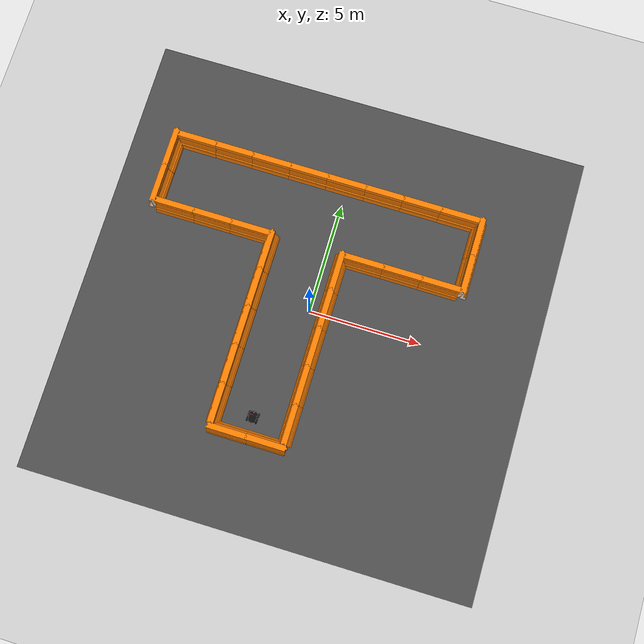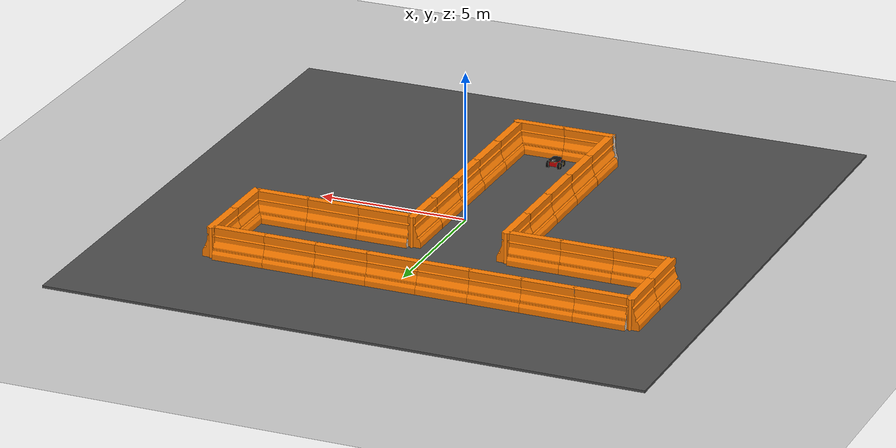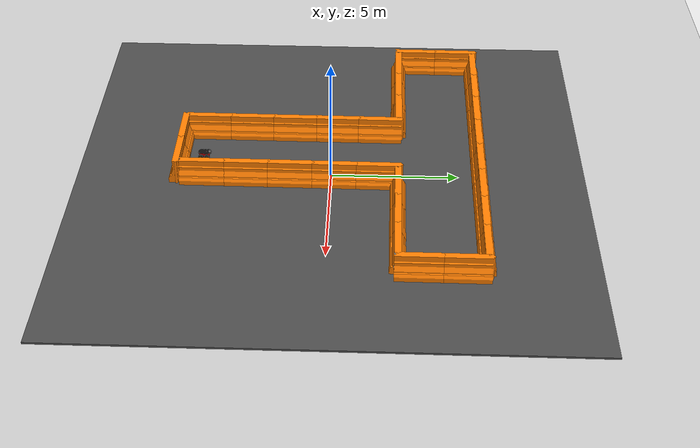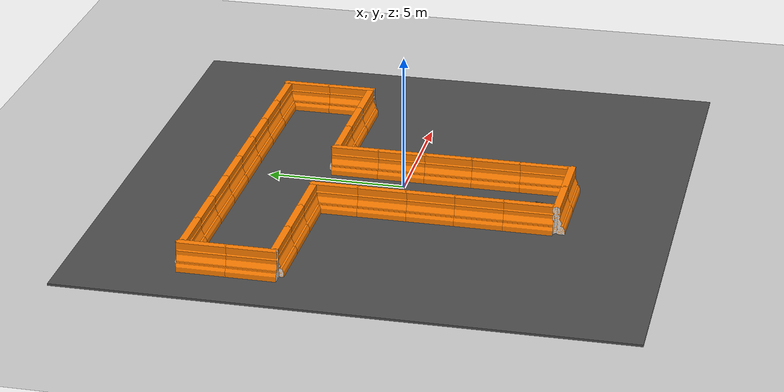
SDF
<sdf version="1.5">
 <world name="default">
  <model name="ground_plane">
   <static>1</static>
   <link name="link">
    <collision name="collision">
     <geometry><plane><normal>0 0 1</normal><size>100 100</size></plane></geometry>
     <surface><friction><ode><mu>100</mu><mu2>50</mu2></ode></friction></surface>
    </collision>
    <visual name="visual">
     <cast_shadows>0</cast_shadows>
     <geometry><plane><normal>0 0 1</normal><size>100 100</size></plane></geometry>
     <material>
      <script><uri>file://media/materials/scripts/gazebo.material</uri><name>Gazebo/Grey</name></script>
     </material>
    </visual>
   </link>
  </model>
  <physics name="default_physics" default="0" type="ode">
   <max_step_size>0.001</max_step_size>
   <real_time_update_rate>1000</real_time_update_rate>
   <gravity>0 0 -9.8</gravity>
   <magnetic_field>5.5645e-06 2.28758e-05 -4.23884e-05</magnetic_field>
  </physics>
  <scene><ambient>0.4 0.4 0.4 1</ambient><background>0.7 0.7 0.7 1</background><shadows>1</shadows></scene>
  <spherical_coordinates>
   <surface_model>EARTH_WGS84</surface_model>
   <latitude_deg>0</latitude_deg>
   <longitude_deg>0</longitude_deg>
   <elevation>0</elevation>
   <heading_deg>0</heading_deg>
  </spherical_coordinates>
  <model name="Pioneer3AT">
   <pose>-1.00371 -5.11243 0.220001 5e-06 -5e-06 1.51686</pose>
   <static>0</static>
   <link name="chassis">
    <inertial>
     <mass>14</mass>
     <inertia><ixx>0.3338</ixx><ixy>0</ixy><ixz>0</ixz><iyy>0.4783</iyy><iyz>0</iyz><izz>0.3338</izz></inertia>
    </inertial>
    <collision name="collision"><geometry><box><size>0.501 0.4 0.19</size></box></geometry></collision>
    <visual name="visual">
     <geometry><mesh><uri>model://pioneer3at/meshes/chassis.dae</uri></mesh></geometry>
    </visual>
    <velocity_decay><linear>0</linear><angular>0</angular></velocity_decay>
   </link>
   <link name="right_front_wheel">
    <pose>0.125 -0.201 -0.06 1.5707 -0 0</pose>
    <collision name="collision">
     <geometry><cylinder><radius>0.11</radius><length>0.075</length></cylinder></geometry>
     <surface><friction><ode><mu>1</mu><mu2>1</mu2><slip1>0.5</slip1><slip2>0</slip2></ode></friction></surface>
    </collision>
    <visual name="visual">
     <geometry><mesh><uri>model://pioneer3at/meshes/wheel.dae</uri></mesh></geometry>
    </visual>
    <velocity_decay><linear>0</linear><angular>0</angular></velocity_decay>
    <inertial>
     <inertia><ixx>1</ixx><ixy>0</ixy><ixz>0</ixz><iyy>1</iyy><iyz>0</iyz><izz>1</izz></inertia>
     <mass>1</mass>
    </inertial>
   </link>
   <link name="left_front_wheel">
    <pose>0.125 0.201 -0.06 1.5707 -0 0</pose>
    <collision name="collision">
     <geometry><cylinder><radius>0.11</radius><length>0.075</length></cylinder></geometry>
     <surface><friction><ode><mu>1</mu><mu2>1</mu2><slip1>0.5</slip1><slip2>0</slip2></ode></friction></surface>
    </collision>
    <visual name="visual">
     <geometry><mesh><uri>model://pioneer3at/meshes/wheel.dae</uri></mesh></geometry>
    </visual>
    <velocity_decay><linear>0</linear><angular>0</angular></velocity_decay>
    <inertial>
     <inertia><ixx>1</ixx><ixy>0</ixy><ixz>0</ixz><iyy>1</iyy><iyz>0</iyz><izz>1</izz></inertia>
     <mass>1</mass>
    </inertial>
   </link>
   <link name="right_rear_wheel">
    <pose>-0.125 -0.201 -0.06 1.5707 -0 0</pose>
    <collision name="collision">
     <geometry><cylinder><radius>0.11</radius><length>0.075</length></cylinder></geometry>
     <surface><friction><ode><mu>1</mu><mu2>1</mu2><slip1>0.5</slip1><slip2>0</slip2></ode></friction></surface>
    </collision>
    <visual name="visual">
     <geometry><mesh><uri>model://pioneer3at/meshes/wheel.dae</uri></mesh></geometry>
    </visual>
    <velocity_decay><linear>0</linear><angular>0</angular></velocity_decay>
    <inertial>
     <inertia><ixx>1</ixx><ixy>0</ixy><ixz>0</ixz><iyy>1</iyy><iyz>0</iyz><izz>1</izz></inertia>
     <mass>1</mass>
    </inertial>
   </link>
   <link name="left_rear_wheel">
    <pose>-0.125 0.201 -0.06 1.5707 -0 0</pose>
    <collision name="collision">
     <geometry><cylinder><radius>0.11</radius><length>0.075</length></cylinder></geometry>
     <surface><friction><ode><mu>1</mu><mu2>1</mu2><slip1>0.5</slip1><slip2>0</slip2></ode></friction></surface>
    </collision>
    <visual name="visual">
     <geometry><mesh><uri>model://pioneer3at/meshes/wheel.dae</uri></mesh></geometry>
    </visual>
    <velocity_decay><linear>0</linear><angular>0</angular></velocity_decay>
    <inertial>
     <inertia><ixx>1</ixx><ixy>0</ixy><ixz>0</ixz><iyy>1</iyy><iyz>0</iyz><izz>1</izz></inertia>
     <mass>1</mass>
    </inertial>
   </link>
   <joint name="right_front" type="revolute">
    <child>right_front_wheel</child>
    <parent>chassis</parent>
    <axis>
     <xyz>0 0 -1</xyz>
     <limit><lower>-1e+16</lower><upper>1e+16</upper></limit>
     <use_parent_model_frame>0</use_parent_model_frame>
     <dynamics><spring_reference>0</spring_reference><spring_stiffness>0</spring_stiffness></dynamics>
    </axis>
   </joint>
   <joint name="right_rear" type="revolute">
    <child>right_rear_wheel</child>
    <parent>chassis</parent>
    <axis>
     <xyz>0 0 -1</xyz>
     <limit><lower>-1e+16</lower><upper>1e+16</upper></limit>
     <use_parent_model_frame>0</use_parent_model_frame>
     <dynamics><spring_reference>0</spring_reference><spring_stiffness>0</spring_stiffness></dynamics>
    </axis>
   </joint>
   <joint name="left_front" type="revolute">
    <child>left_front_wheel</child>
    <parent>chassis</parent>
    <axis>
     <xyz>0 0 -1</xyz>
     <limit><lower>-1e+16</lower><upper>1e+16</upper></limit>
     <use_parent_model_frame>0</use_parent_model_frame>
     <dynamics><spring_reference>0</spring_reference><spring_stiffness>0</spring_stiffness></dynamics>
    </axis>
   </joint>
   <joint name="left_rear" type="revolute">
    <child>left_rear_wheel</child>
    <parent>chassis</parent>
    <axis>
     <xyz>0 0 -1</xyz>
     <limit><lower>-1e+16</lower><upper>1e+16</upper></limit>
     <use_parent_model_frame>0</use_parent_model_frame>
     <dynamics><spring_reference>0</spring_reference><spring_stiffness>0</spring_stiffness></dynamics>
    </axis>
   </joint>
   <link name="hokuyo::link">
    <inertial>
     <mass>0.1</mass>
     <inertia><ixx>1</ixx><ixy>0</ixy><ixz>0</ixz><iyy>1</iyy><iyz>0</iyz><izz>1</izz></inertia>
    </inertial>
    <visual name="visual"><geometry><mesh><uri>model://hokuyo/meshes/hokuyo.dae</uri></mesh></geometry></visual>
    <collision name="collision-base">
     <pose>0 0 -0.0145 0 -0 0</pose>
     <geometry><box><size>0.05 0.05 0.041</size></box></geometry>
    </collision>
    <collision name="collision-top">
     <pose>0 0 0.0205 0 -0 0</pose>
     <geometry><cylinder><radius>0.021</radius><length>0.029</length></cylinder></geometry>
    </collision>
    <sensor name="laser" type="ray">
     <pose>0.01 0 0.0175 0 -0 0</pose>
     <ray>
      <scan>
       <horizontal>
        <samples>100</samples>
        <resolution>1</resolution>
        <min_angle>-1.26889</min_angle>
        <max_angle>1.2689</max_angle>
       </horizontal>
      </scan>
      <range><min>0.08</min><max>5</max><resolution>0.01</resolution></range>
     </ray>
     <plugin name="laser" filename="libRayPlugin.so"/>
     <always_on>1</always_on>
     <update_rate>20</update_rate>
     <visualize>1</visualize>
     <plugin name="gazebo_ros_head_hokuyo_controller" filename="libgazebo_ros_laser.so">
      <topicName>/Pioneer3AT/laserscan</topicName>
      <frameName>Pioneer3AT::hokuyo::link</frameName>
     </plugin>
    </sensor>
    <velocity_decay><linear>0</linear><angular>0</angular></velocity_decay>
    <pose>0.2 0 0.13 0 -0 0</pose>
   </link>
   <joint name="hokuyo_joint" type="revolute">
    <child>hokuyo::link</child>
    <parent>chassis</parent>
    <axis>
     <xyz>0 0 1</xyz>
     <limit><upper>0</upper><lower>0</lower></limit>
     <use_parent_model_frame>0</use_parent_model_frame>
     <dynamics><spring_reference>0</spring_reference><spring_stiffness>0</spring_stiffness></dynamics>
    </axis>
   </joint>
   <plugin name="SkidSteerDrivePlugin" filename="libSkidSteerDrivePlugin.so"/>
   <link name="camera::link">
    <inertial>
     <mass>0.1</mass>
     <inertia><ixx>1</ixx><ixy>0</ixy><ixz>0</ixz><iyy>1</iyy><iyz>0</iyz><izz>1</izz></inertia>
    </inertial>
    <collision name="collision"><geometry><box><size>0.1 0.1 0.1</size></box></geometry></collision>
    <visual name="visual"><geometry><box><size>0.1 0.1 0.1</size></box></geometry></visual>
    <sensor name="camera" type="camera">
     <pose>0.01 0 0.3175 0 -0 0</pose>
     <camera name="__default__">
      <horizontal_fov>1.047</horizontal_fov>
      <image><width>320</width><height>240</height></image>
      <clip><near>0.1</near><far>100</far></clip>
     </camera>
     <plugin name="camera_controller" filename="libgazebo_ros_camera.so">
      <alwaysOn>true</alwaysOn>
      <updateRate>100.0</updateRate>
      <cameraName>Pioneer3AT/camera1</cameraName>
      <imageTopicName>image_raw</imageTopicName>
      <cameraInfoTopicName>camera_info</cameraInfoTopicName>
      <frameName>camera_link</frameName>
      <hackBaseline>0.07</hackBaseline>
      <distortionK1>0.0</distortionK1>
      <distortionK2>0.0</distortionK2>
      <distortionK3>0.0</distortionK3>
      <distortionT1>0.0</distortionT1>
      <distortionT2>0.0</distortionT2>
     </plugin>
     <visualize>1</visualize>
    </sensor>
   </link>
   <joint name="camera_joint" type="revolute">
    <child>camera::link</child>
    <parent>chassis</parent>
    <axis>
     <xyz>0 0 1</xyz>
     <limit><upper>0</upper><lower>0</lower></limit>
     <use_parent_model_frame>0</use_parent_model_frame>
     <dynamics><spring_reference>0</spring_reference><spring_stiffness>0</spring_stiffness></dynamics>
    </axis>
   </joint>
   <link name="bumper::link">
    <inertial>
     <mass>0.1</mass>
     <inertia><ixx>1</ixx><ixy>0</ixy><ixz>0</ixz><iyy>1</iyy><iyz>0</iyz><izz>1</izz></inertia>
    </inertial>
    <collision name="collision"><geometry><box><size>0.55 0.55 0.2</size></box></geometry></collision>
    <visual name="visual"><geometry><box><size>0.1 0.1 0.1</size></box></geometry></visual>
    <sensor name="contact_sensor" type="contact">
     <pose>0.0 0 0.25 0 -0 0</pose>
     <contact><collision>collision</collision></contact>
     <plugin name="bumper" filename="libgazebo_ros_bumper.so">
      <bumperTopicName>Pioneer3AT/contact_sensor</bumperTopicName>
      <frameName>world</frameName>
      <always_on>true</always_on>
      <update_rate>30.0</update_rate>
     </plugin>
     <visualize>1</visualize>
    </sensor>
   </link>
   <joint name="bumper_joint" type="revolute">
    <child>bumper::link</child>
    <parent>chassis</parent>
    <axis>
     <xyz>0 0 1</xyz>
     <limit><upper>0</upper><lower>0</lower></limit>
     <use_parent_model_frame>0</use_parent_model_frame>
     <dynamics><spring_reference>0</spring_reference><spring_stiffness>0</spring_stiffness></dynamics>
    </axis>
   </joint>
   <plugin name="skid_steer_drive_controller" filename="libgazebo_ros_skid_steer_drive.so">
    <updateRate>100.0</updateRate>
    <leftFrontJoint>left_front</leftFrontJoint>
    <rightFrontJoint>right_front</rightFrontJoint>
    <rightRearJoint>right_rear</rightRearJoint>
    <leftRearJoint>left_rear</leftRearJoint>
    <wheelSeparation>0.5</wheelSeparation>
    <wheelDiameter>0.22</wheelDiameter>
    <commandTopic>/Pioneer3AT/cmd_vel</commandTopic>
    <torque>5.</torque>
   </plugin>
  </model>
  <light name="sun" type="directional">
   <pose>1 -15 10 0 -0 0</pose>
   <diffuse>0.8 0.8 0.8 1</diffuse>
   <specular>0.2 0.2 0.2 1</specular>
   <attenuation>
    <range>1000</range>
    <constant>0.9</constant>
    <linear>0.01</linear>
    <quadratic>0.001</quadratic>
   </attenuation>
   <direction>-0.5 0.1 -0.9</direction>
  </light>
  <light name="user_point_light_4" type="point">
   <pose>-1.11368 -7.99697 1 0 -0 0</pose>
   <diffuse>0.886275 0.886275 0.886275 1</diffuse>
   <specular>0.882353 0.882353 0.882353 1</specular>
   <attenuation>
    <range>20</range>
    <constant>0.7</constant>
    <linear>0.05</linear>
    <quadratic>0.01</quadratic>
   </attenuation>
   <cast_shadows>0</cast_shadows>
   <direction>0 0 -1</direction>
  </light>
  <model name="drc_practice_organge_jersey_barrier_clone_clone">
   <static>1</static>
   <link name="drc_practice_organge_jersey_barrier_clone::link">
    <visual name="visual">
     <geometry>
      <mesh><uri>model://drc_practice_orange_jersey_barrier/meshes/jersey_barrier.dae</uri></mesh>
     </geometry>
    </visual>
    <collision name="collision">
     <geometry>
      <mesh><uri>model://drc_practice_orange_jersey_barrier/meshes/jersey_barrier.dae</uri></mesh>
     </geometry>
    </collision>
   </link>
   <pose>-0.120341 -6.00376 0 0 -0 1.5708</pose>
  </model>
  <model name="drc_practice_organge_jersey_barrier_clone_clone_clone">
   <static>1</static>
   <link name="drc_practice_organge_jersey_barrier_clone::link">
    <visual name="visual">
     <geometry>
      <mesh><uri>model://drc_practice_orange_jersey_barrier/meshes/jersey_barrier.dae</uri></mesh>
     </geometry>
    </visual>
    <collision name="collision">
     <geometry>
      <mesh><uri>model://drc_practice_orange_jersey_barrier/meshes/jersey_barrier.dae</uri></mesh>
     </geometry>
    </collision>
   </link>
   <pose>0.63064 -5.01109 0 0 0 -3.14159</pose>
  </model>
  <model name="drc_practice_organge_jersey_barrier_clone_clone_clone_clone">
   <static>1</static>
   <link name="drc_practice_organge_jersey_barrier_clone::link">
    <visual name="visual">
     <geometry>
      <mesh><uri>model://drc_practice_orange_jersey_barrier/meshes/jersey_barrier.dae</uri></mesh>
     </geometry>
    </visual>
    <collision name="collision">
     <geometry>
      <mesh><uri>model://drc_practice_orange_jersey_barrier/meshes/jersey_barrier.dae</uri></mesh>
     </geometry>
    </collision>
   </link>
   <pose>-2.56943 -5.01743 0 0 0 -3.14159</pose>
  </model>
  <model name="drc_practice_organge_jersey_barrier_clone_clone_clone_0">
   <static>1</static>
   <link name="drc_practice_organge_jersey_barrier_clone::link">
    <visual name="visual">
     <geometry>
      <mesh><uri>model://drc_practice_orange_jersey_barrier/meshes/jersey_barrier.dae</uri></mesh>
     </geometry>
    </visual>
    <collision name="collision">
     <geometry>
      <mesh><uri>model://drc_practice_orange_jersey_barrier/meshes/jersey_barrier.dae</uri></mesh>
     </geometry>
    </collision>
   </link>
   <pose>-1.83019 -6 0 0 -0 1.5708</pose>
  </model>
  <model name="drc_practice_organge_jersey_barrier_clone_clone_clone_clone_0">
   <static>1</static>
   <link name="drc_practice_organge_jersey_barrier_clone::link">
    <visual name="visual">
     <geometry>
      <mesh><uri>model://drc_practice_orange_jersey_barrier/meshes/jersey_barrier.dae</uri></mesh>
     </geometry>
    </visual>
    <collision name="collision">
     <geometry>
      <mesh><uri>model://drc_practice_orange_jersey_barrier/meshes/jersey_barrier.dae</uri></mesh>
     </geometry>
    </collision>
   </link>
   <pose>0.638359 -3.28529 0 0 0 -3.14159</pose>
  </model>
  <model name="drc_practice_organge_jersey_barrier_clone_clone_clone_clone_1">
   <static>1</static>
   <link name="drc_practice_organge_jersey_barrier_clone::link">
    <visual name="visual">
     <geometry>
      <mesh><uri>model://drc_practice_orange_jersey_barrier/meshes/jersey_barrier.dae</uri></mesh>
     </geometry>
    </visual>
    <collision name="collision">
     <geometry>
      <mesh><uri>model://drc_practice_orange_jersey_barrier/meshes/jersey_barrier.dae</uri></mesh>
     </geometry>
    </collision>
   </link>
   <pose>0.64762 -1.5497 0 0 0 -3.14159</pose>
  </model>
  <model name="drc_practice_organge_jersey_barrier_clone_clone_clone_clone_2">
   <static>1</static>
   <link name="drc_practice_organge_jersey_barrier_clone::link">
    <visual name="visual">
     <geometry>
      <mesh><uri>model://drc_practice_orange_jersey_barrier/meshes/jersey_barrier.dae</uri></mesh>
     </geometry>
    </visual>
    <collision name="collision">
     <geometry>
      <mesh><uri>model://drc_practice_orange_jersey_barrier/meshes/jersey_barrier.dae</uri></mesh>
     </geometry>
    </collision>
   </link>
   <pose>0.657691 0.170611 0 0 0 -3.14159</pose>
  </model>
  <model name="drc_practice_organge_jersey_barrier_clone_clone_clone_clone_3">
   <static>1</static>
   <link name="drc_practice_organge_jersey_barrier_clone::link">
    <visual name="visual">
     <geometry>
      <mesh><uri>model://drc_practice_orange_jersey_barrier/meshes/jersey_barrier.dae</uri></mesh>
     </geometry>
    </visual>
    <collision name="collision">
     <geometry>
      <mesh><uri>model://drc_practice_orange_jersey_barrier/meshes/jersey_barrier.dae</uri></mesh>
     </geometry>
    </collision>
   </link>
   <pose>-2.55927 -3.27922 0 0 0 -3.14159</pose>
  </model>
  <model name="drc_practice_organge_jersey_barrier_clone_clone_clone_clone_4">
   <static>1</static>
   <link name="drc_practice_organge_jersey_barrier_clone::link">
    <visual name="visual">
     <geometry>
      <mesh><uri>model://drc_practice_orange_jersey_barrier/meshes/jersey_barrier.dae</uri></mesh>
     </geometry>
    </visual>
    <collision name="collision">
     <geometry>
      <mesh><uri>model://drc_practice_orange_jersey_barrier/meshes/jersey_barrier.dae</uri></mesh>
     </geometry>
    </collision>
   </link>
   <pose>-2.54889 -1.54056 0 0 0 -3.14159</pose>
  </model>
  <model name="drc_practice_organge_jersey_barrier_clone_clone_clone_clone_5">
   <static>1</static>
   <link name="drc_practice_organge_jersey_barrier_clone::link">
    <visual name="visual">
     <geometry>
      <mesh><uri>model://drc_practice_orange_jersey_barrier/meshes/jersey_barrier.dae</uri></mesh>
     </geometry>
    </visual>
    <collision name="collision">
     <geometry>
      <mesh><uri>model://drc_practice_orange_jersey_barrier/meshes/jersey_barrier.dae</uri></mesh>
     </geometry>
    </collision>
   </link>
   <pose>-2.54304 0.192517 0 0 0 -3.14159</pose>
  </model>
  <model name="drc_practice_organge_jersey_barrier_clone_clone_clone_clone_2_clone">
   <static>1</static>
   <link name="drc_practice_organge_jersey_barrier_clone::link">
    <visual name="visual">
     <geometry>
      <mesh><uri>model://drc_practice_orange_jersey_barrier/meshes/jersey_barrier.dae</uri></mesh>
     </geometry>
    </visual>
    <collision name="collision">
     <geometry>
      <mesh><uri>model://drc_practice_orange_jersey_barrier/meshes/jersey_barrier.dae</uri></mesh>
     </geometry>
    </collision>
   </link>
   <pose>0.667916 1.8912 0 0 0 -3.14159</pose>
  </model>
  <model name="drc_practice_organge_jersey_barrier_clone_clone_clone_clone_2_clone_0">
   <static>1</static>
   <link name="drc_practice_organge_jersey_barrier_clone::link">
    <visual name="visual">
     <geometry>
      <mesh><uri>model://drc_practice_orange_jersey_barrier/meshes/jersey_barrier.dae</uri></mesh>
     </geometry>
    </visual>
    <collision name="collision">
     <geometry>
      <mesh><uri>model://drc_practice_orange_jersey_barrier/meshes/jersey_barrier.dae</uri></mesh>
     </geometry>
    </collision>
   </link>
   <pose>-2.53345 1.92245 0 0 0 -3.14159</pose>
  </model>
  <model name="drc_practice_organge_jersey_barrier_clone_clone_clone_0_clone">
   <static>1</static>
   <link name="drc_practice_organge_jersey_barrier_clone::link">
    <visual name="visual">
     <geometry>
      <mesh><uri>model://drc_practice_orange_jersey_barrier/meshes/jersey_barrier.dae</uri></mesh>
     </geometry>
    </visual>
    <collision name="collision">
     <geometry>
      <mesh><uri>model://drc_practice_orange_jersey_barrier/meshes/jersey_barrier.dae</uri></mesh>
     </geometry>
    </collision>
   </link>
   <pose>-3.52783 2.68276 0 0 -0 1.5708</pose>
  </model>
  <model name="drc_practice_organge_jersey_barrier_clone_clone_clone_0_clone_0">
   <static>1</static>
   <link name="drc_practice_organge_jersey_barrier_clone::link">
    <visual name="visual">
     <geometry>
      <mesh><uri>model://drc_practice_orange_jersey_barrier/meshes/jersey_barrier.dae</uri></mesh>
     </geometry>
    </visual>
    <collision name="collision">
     <geometry>
      <mesh><uri>model://drc_practice_orange_jersey_barrier/meshes/jersey_barrier.dae</uri></mesh>
     </geometry>
    </collision>
   </link>
   <pose>1.66169 2.63231 0 0 -0 1.5708</pose>
  </model>
  <model name="drc_practice_organge_jersey_barrier_clone_clone_clone_0_clone_1">
   <static>1</static>
   <link name="drc_practice_organge_jersey_barrier_clone::link">
    <visual name="visual">
     <geometry>
      <mesh><uri>model://drc_practice_orange_jersey_barrier/meshes/jersey_barrier.dae</uri></mesh>
     </geometry>
    </visual>
    <collision name="collision">
     <geometry>
      <mesh><uri>model://drc_practice_orange_jersey_barrier/meshes/jersey_barrier.dae</uri></mesh>
     </geometry>
    </collision>
   </link>
   <pose>-5.2612 2.69136 0 0 -0 1.5708</pose>
  </model>
  <model name="drc_practice_organge_jersey_barrier_clone_clone_clone_0_clone_2">
   <static>1</static>
   <link name="drc_practice_organge_jersey_barrier_clone::link">
    <visual name="visual">
     <geometry>
      <mesh><uri>model://drc_practice_orange_jersey_barrier/meshes/jersey_barrier.dae</uri></mesh>
     </geometry>
    </visual>
    <collision name="collision">
     <geometry>
      <mesh><uri>model://drc_practice_orange_jersey_barrier/meshes/jersey_barrier.dae</uri></mesh>
     </geometry>
    </collision>
   </link>
   <pose>-6.99797 2.69783 0 0 -0 1.5708</pose>
  </model>
  <model name="drc_practice_organge_jersey_barrier_clone_clone_clone_0_clone_3">
   <static>1</static>
   <link name="drc_practice_organge_jersey_barrier_clone::link">
    <visual name="visual">
     <geometry>
      <mesh><uri>model://drc_practice_orange_jersey_barrier/meshes/jersey_barrier.dae</uri></mesh>
     </geometry>
    </visual>
    <collision name="collision">
     <geometry>
      <mesh><uri>model://drc_practice_orange_jersey_barrier/meshes/jersey_barrier.dae</uri></mesh>
     </geometry>
    </collision>
   </link>
   <pose>3.39161 2.62613 0 0 -0 1.5708</pose>
  </model>
  <model name="drc_practice_organge_jersey_barrier_clone_clone_clone_0_clone_4">
   <static>1</static>
   <link name="drc_practice_organge_jersey_barrier_clone::link">
    <visual name="visual">
     <geometry>
      <mesh><uri>model://drc_practice_orange_jersey_barrier/meshes/jersey_barrier.dae</uri></mesh>
     </geometry>
    </visual>
    <collision name="collision">
     <geometry>
      <mesh><uri>model://drc_practice_orange_jersey_barrier/meshes/jersey_barrier.dae</uri></mesh>
     </geometry>
    </collision>
   </link>
   <pose>5.11833 2.6138 0 0 -0 1.5708</pose>
  </model>
  <model name="drc_practice_organge_jersey_barrier_clone_clone_clone_clone_2_clone_0_clone">
   <static>1</static>
   <link name="drc_practice_organge_jersey_barrier_clone::link">
    <visual name="visual">
     <geometry>
      <mesh><uri>model://drc_practice_orange_jersey_barrier/meshes/jersey_barrier.dae</uri></mesh>
     </geometry>
    </visual>
    <collision name="collision">
     <geometry>
      <mesh><uri>model://drc_practice_orange_jersey_barrier/meshes/jersey_barrier.dae</uri></mesh>
     </geometry>
    </collision>
   </link>
   <pose>-7.9856 3.44723 0 0 0 -3.14159</pose>
  </model>
  <model name="drc_practice_organge_jersey_barrier_clone_clone_clone_clone_2_clone_0_clone_0">
   <static>1</static>
   <link name="drc_practice_organge_jersey_barrier_clone::link">
    <visual name="visual">
     <geometry>
      <mesh><uri>model://drc_practice_orange_jersey_barrier/meshes/jersey_barrier.dae</uri></mesh>
     </geometry>
    </visual>
    <collision name="collision">
     <geometry>
      <mesh><uri>model://drc_practice_orange_jersey_barrier/meshes/jersey_barrier.dae</uri></mesh>
     </geometry>
    </collision>
   </link>
   <pose>-7.97522 5.17309 0 0 0 -3.14159</pose>
  </model>
  <model name="drc_practice_organge_jersey_barrier_clone_clone_clone_clone_2_clone_0_clone_1">
   <static>1</static>
   <link name="drc_practice_organge_jersey_barrier_clone::link">
    <visual name="visual">
     <geometry>
      <mesh><uri>model://drc_practice_orange_jersey_barrier/meshes/jersey_barrier.dae</uri></mesh>
     </geometry>
    </visual>
    <collision name="collision">
     <geometry>
      <mesh><uri>model://drc_practice_orange_jersey_barrier/meshes/jersey_barrier.dae</uri></mesh>
     </geometry>
    </collision>
   </link>
   <pose>6.11595 3.35587 0 0 0 -3.14159</pose>
  </model>
  <model name="drc_practice_organge_jersey_barrier_clone_clone_clone_clone_2_clone_0_clone_2">
   <static>1</static>
   <link name="drc_practice_organge_jersey_barrier_clone::link">
    <visual name="visual">
     <geometry>
      <mesh><uri>model://drc_practice_orange_jersey_barrier/meshes/jersey_barrier.dae</uri></mesh>
     </geometry>
    </visual>
    <collision name="collision">
     <geometry>
      <mesh><uri>model://drc_practice_orange_jersey_barrier/meshes/jersey_barrier.dae</uri></mesh>
     </geometry>
    </collision>
   </link>
   <pose>6.12397 5.08943 0 0 0 -3.14159</pose>
  </model>
  <model name="drc_practice_organge_jersey_barrier_clone_clone_clone_0_clone_4_clone">
   <static>1</static>
   <link name="drc_practice_organge_jersey_barrier_clone::link">
    <visual name="visual">
     <geometry>
      <mesh><uri>model://drc_practice_orange_jersey_barrier/meshes/jersey_barrier.dae</uri></mesh>
     </geometry>
    </visual>
    <collision name="collision">
     <geometry>
      <mesh><uri>model://drc_practice_orange_jersey_barrier/meshes/jersey_barrier.dae</uri></mesh>
     </geometry>
    </collision>
   </link>
   <pose>5.13693 5.83534 0 0 -0 1.5708</pose>
  </model>
  <model name="drc_practice_organge_jersey_barrier_clone_clone_clone_0_clone_4_clone_0">
   <static>1</static>
   <link name="drc_practice_organge_jersey_barrier_clone::link">
    <visual name="visual">
     <geometry>
      <mesh><uri>model://drc_practice_orange_jersey_barrier/meshes/jersey_barrier.dae</uri></mesh>
     </geometry>
    </visual>
    <collision name="collision">
     <geometry>
      <mesh><uri>model://drc_practice_orange_jersey_barrier/meshes/jersey_barrier.dae</uri></mesh>
     </geometry>
    </collision>
   </link>
   <pose>3.41521 5.84427 0 0 -0 1.5708</pose>
  </model>
  <model name="drc_practice_organge_jersey_barrier_clone_clone_clone_0_clone_4_clone_1">
   <static>1</static>
   <link name="drc_practice_organge_jersey_barrier_clone::link">
    <visual name="visual">
     <geometry>
      <mesh><uri>model://drc_practice_orange_jersey_barrier/meshes/jersey_barrier.dae</uri></mesh>
     </geometry>
    </visual>
    <collision name="collision">
     <geometry>
      <mesh><uri>model://drc_practice_orange_jersey_barrier/meshes/jersey_barrier.dae</uri></mesh>
     </geometry>
    </collision>
   </link>
   <pose>1.6799 5.85367 0 0 -0 1.5708</pose>
  </model>
  <model name="drc_practice_organge_jersey_barrier_clone_clone_clone_0_clone_4_clone_2">
   <static>1</static>
   <link name="drc_practice_organge_jersey_barrier_clone::link">
    <visual name="visual">
     <geometry>
      <mesh><uri>model://drc_practice_orange_jersey_barrier/meshes/jersey_barrier.dae</uri></mesh>
     </geometry>
    </visual>
    <collision name="collision">
     <geometry>
      <mesh><uri>model://drc_practice_orange_jersey_barrier/meshes/jersey_barrier.dae</uri></mesh>
     </geometry>
    </collision>
   </link>
   <pose>-0.053895 5.85934 0 0 -0 1.5708</pose>
  </model>
  <model name="drc_practice_organge_jersey_barrier_clone_clone_clone_0_clone_4_clone_3">
   <static>1</static>
   <link name="drc_practice_organge_jersey_barrier_clone::link">
    <visual name="visual">
     <geometry>
      <mesh><uri>model://drc_practice_orange_jersey_barrier/meshes/jersey_barrier.dae</uri></mesh>
     </geometry>
    </visual>
    <collision name="collision">
     <geometry>
      <mesh><uri>model://drc_practice_orange_jersey_barrier/meshes/jersey_barrier.dae</uri></mesh>
     </geometry>
    </collision>
   </link>
   <pose>-1.78417 5.86938 0 0 -0 1.5708</pose>
  </model>
  <model name="drc_practice_organge_jersey_barrier_clone_clone_clone_0_clone_4_clone_4">
   <static>1</static>
   <link name="drc_practice_organge_jersey_barrier_clone::link">
    <visual name="visual">
     <geometry>
      <mesh><uri>model://drc_practice_orange_jersey_barrier/meshes/jersey_barrier.dae</uri></mesh>
     </geometry>
    </visual>
    <collision name="collision">
     <geometry>
      <mesh><uri>model://drc_practice_orange_jersey_barrier/meshes/jersey_barrier.dae</uri></mesh>
     </geometry>
    </collision>
   </link>
   <pose>-6.98568 5.89422 0 0 -0 1.5708</pose>
  </model>
  <model name="drc_practice_organge_jersey_barrier_clone_clone_clone_0_clone_4_clone_5">
   <static>1</static>
   <link name="drc_practice_organge_jersey_barrier_clone::link">
    <visual name="visual">
     <geometry>
      <mesh><uri>model://drc_practice_orange_jersey_barrier/meshes/jersey_barrier.dae</uri></mesh>
     </geometry>
    </visual>
    <collision name="collision">
     <geometry>
      <mesh><uri>model://drc_practice_orange_jersey_barrier/meshes/jersey_barrier.dae</uri></mesh>
     </geometry>
    </collision>
   </link>
   <pose>-3.51933 5.87857 0 0 -0 1.5708</pose>
  </model>
  <model name="drc_practice_organge_jersey_barrier_clone_clone_clone_0_clone_4_clone_6">
   <static>1</static>
   <link name="drc_practice_organge_jersey_barrier_clone::link">
    <visual name="visual">
     <geometry>
      <mesh><uri>model://drc_practice_orange_jersey_barrier/meshes/jersey_barrier.dae</uri></mesh>
     </geometry>
    </visual>
    <collision name="collision">
     <geometry>
      <mesh><uri>model://drc_practice_orange_jersey_barrier/meshes/jersey_barrier.dae</uri></mesh>
     </geometry>
    </collision>
   </link>
   <pose>-5.25172 5.88993 0 0 -0 1.5708</pose>
  </model>
  <light name="user_point_light_4_clone" type="point">
   <pose>-1 -5 1 0 -0 0</pose>
   <diffuse>0.886275 0.886275 0.886275 1</diffuse>
   <specular>0.882353 0.882353 0.882353 1</specular>
   <direction>0 0 -1</direction>
   <attenuation>
    <range>20</range>
    <constant>0.7</constant>
    <linear>0.05</linear>
    <quadratic>0.01</quadratic>
   </attenuation>
  </light>
  <light name="user_point_light_4_clone_0" type="point">
   <pose>-1 0 1 0 -0 0</pose>
   <diffuse>0.886275 0.886275 0.886275 1</diffuse>
   <specular>0.882353 0.882353 0.882353 1</specular>
   <direction>0 0 -1</direction>
   <attenuation>
    <range>20</range>
    <constant>0.7</constant>
    <linear>0.05</linear>
    <quadratic>0.01</quadratic>
   </attenuation>
  </light>
  <light name="user_point_light_4_clone_1" type="point">
   <pose>-1 4 1 0 -0 0</pose>
   <diffuse>0.886275 0.886275 0.886275 1</diffuse>
   <specular>0.882353 0.882353 0.882353 1</specular>
   <direction>0 0 -1</direction>
   <attenuation>
    <range>20</range>
    <constant>0.7</constant>
    <linear>0.05</linear>
    <quadratic>0.01</quadratic>
   </attenuation>
  </light>
  <light name="user_point_light_4_clone_2" type="point">
   <pose>3.41921 4 1 0 -0 0</pose>
   <diffuse>0.886275 0.886275 0.886275 1</diffuse>
   <specular>0.882353 0.882353 0.882353 1</specular>
   <direction>0 0 -1</direction>
   <attenuation>
    <range>20</range>
    <constant>0.7</constant>
    <linear>0.05</linear>
    <quadratic>0.01</quadratic>
   </attenuation>
  </light>
  <light name="user_point_light_4_clone_3" type="point">
   <pose>-6 4 1 0 -0 0</pose>
   <diffuse>0.886275 0.886275 0.886275 1</diffuse>
   <specular>0.882353 0.882353 0.882353 1</specular>
   <direction>0 0 -1</direction>
   <attenuation>
    <range>20</range>
    <constant>0.7</constant>
    <linear>0.05</linear>
    <quadratic>0.01</quadratic>
   </attenuation>
  </light>
  <model name="asphalt_plane">
   <static>1</static>
   <link name="link">
    <collision name="collision"><geometry><box><size>20 20 0.1</size></box></geometry></collision>
    <visual name="visual">
     <cast_shadows>0</cast_shadows>
     <geometry><box><size>20 20 0.1</size></box></geometry>
     <material>
      <script>
       <uri>model://asphalt_plane/materials/scripts</uri>
       <uri>model://asphalt_plane/materials/textures</uri>
       <name>vrc/asphalt</name>
      </script>
     </material>
    </visual>
   </link>
  </model>
 </world>
</sdf>
